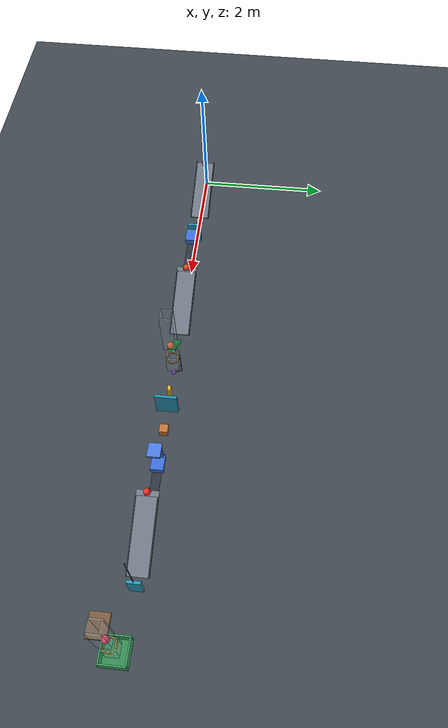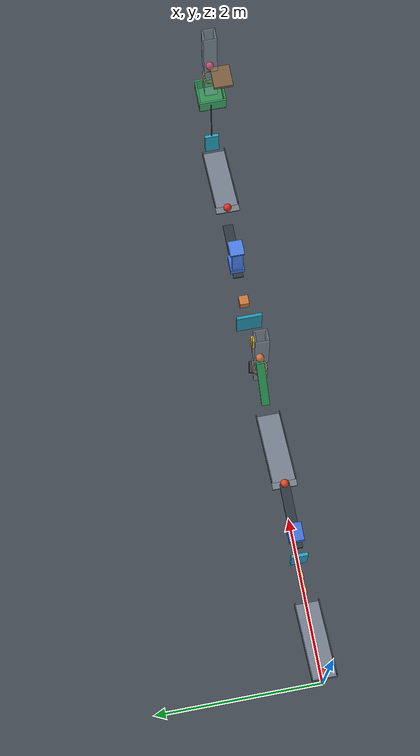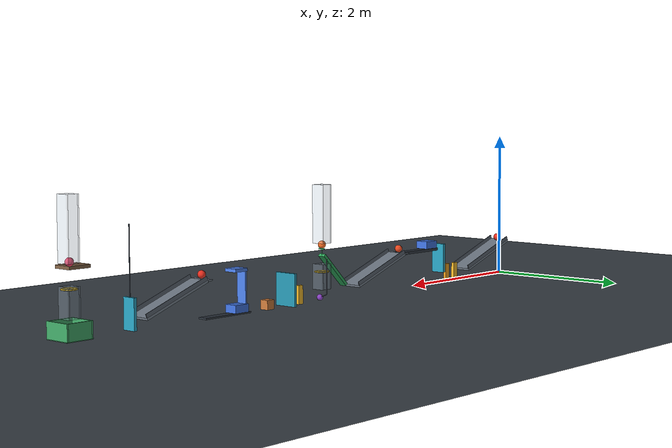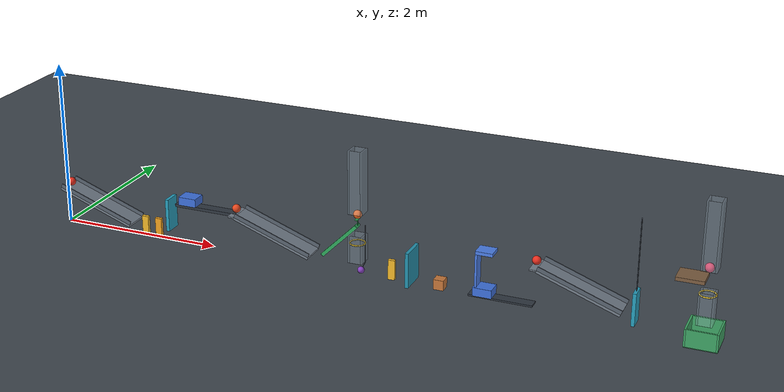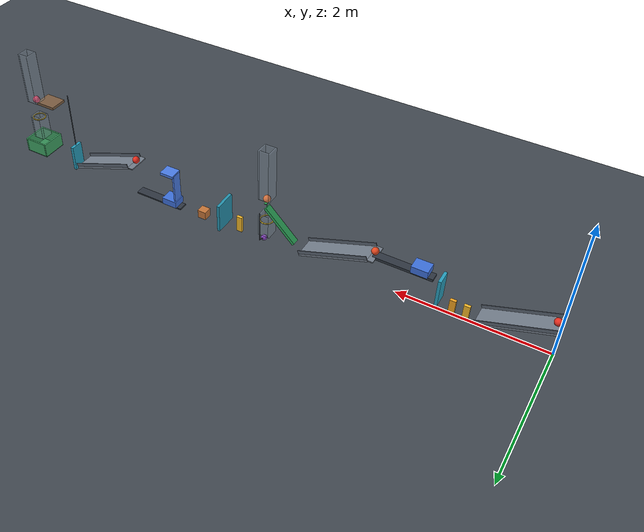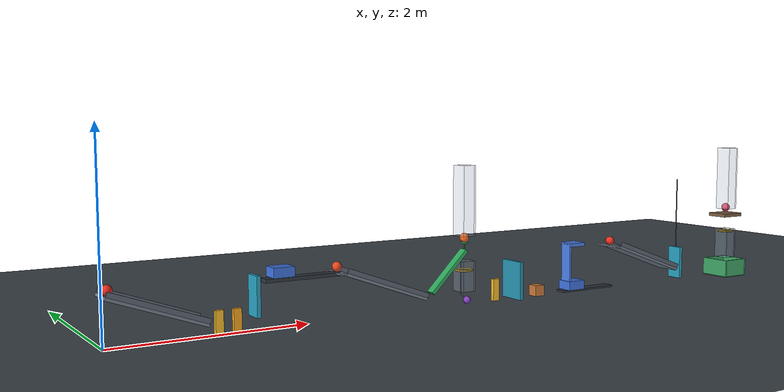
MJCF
<mujoco model="corrected_assisted_chain_reaction">
  <compiler angle="degree" autolimits="true" inertiafromgeom="auto"/>
  <option timestep="0.002" gravity="0 0 -9.81" integrator="implicitfast" solver="Newton" iterations="100" cone="elliptic"/>
  <size njmax="3000" nconmax="1000"/>
  <visual>
    <headlight ambient="0.45 0.45 0.45" diffuse="0.7 0.7 0.7" specular="0.2 0.2 0.2"/>
    <map znear="0.01" zfar="40"/>
  </visual>

  <worldbody>
    <light name="main_light" pos="4 -4 7" dir="0 0 -1" directional="true"/>
    <camera name="overview" pos="4 -10 6" xyaxes="1 0 0 0 0.45 0.893"/>
    <geom name="floor" type="plane" size="12 5 0.1" friction="0.70 0.001 0.0001" condim="3" solref="0.006 0.6901" solimp="0.95 0.99 0.001" rgba="0.25 0.28 0.31 1"/>

    <body name="ramp1" pos="0 0 0.492020143" quat="0.984807753 0 0.173648178 0">
      <geom name="ramp1_surface" type="box" pos="0.5 0 -0.015" size="0.50 0.15 0.015" friction="0.70 0.001 0.0001" condim="3" solref="0.006 0.6901" solimp="0.95 0.99 0.001" rgba="0.45 0.49 0.54 1"/>
      <geom name="ramp1_left_curb" type="box" pos="0.5 0.145 0.025" size="0.50 0.005 0.025" friction="0.70 0.001 0.0001" condim="3" solref="0.006 0.6901" solimp="0.95 0.99 0.001" rgba="0.35 0.39 0.44 1"/>
      <geom name="ramp1_right_curb" type="box" pos="0.5 -0.145 0.025" size="0.50 0.005 0.025" friction="0.70 0.001 0.0001" condim="3" solref="0.006 0.6901" solimp="0.95 0.99 0.001" rgba="0.35 0.39 0.44 1"/>
    </body>

    <body name="ball1" pos="0.054688715 0 0.525324168">
      <freejoint name="ball1_free"/>
      <geom name="ball1_sphere" type="sphere" size="0.05" mass="0.20" friction="0.70 0.001 0.0001" condim="3" solref="0.006 0.6901" solimp="0.95 0.99 0.001" rgba="0.90 0.18 0.12 1"/>
    </body>

    <!-- Ramp1 exit to domino1 near face: 0.10 m.
         Domino1-to-domino2 centre spacing: 0.18 m. -->
    <body name="domino1" pos="1.079692621 0 0.12">
      <freejoint name="domino1_free"/>
      <geom name="domino1_box" type="box" size="0.04 0.02 0.12" mass="0.25" friction="0.70 0.001 0.0001" condim="3" solref="0.006 0.6901" solimp="0.95 0.99 0.001" rgba="0.95 0.72 0.16 1"/>
    </body>

    <body name="domino2" pos="1.259692621 0 0.12">
      <freejoint name="domino2_free"/>
      <geom name="domino2_box" type="box" size="0.04 0.02 0.12" mass="0.25" friction="0.70 0.001 0.0001" condim="3" solref="0.006 0.6901" solimp="0.95 0.99 0.001" rgba="0.95 0.64 0.12 1"/>
    </body>

    <!-- Clockwise viewed from above.
         Lower panel receives domino2; upper panel strikes cart1. -->
    <body name="flap1" pos="1.439692621 -0.10 0.34">
      <joint name="flap1_hinge" type="hinge" axis="0 0 -1" range="0 65" damping="0.04" frictionloss="0.03" armature="0.0001" solreflimit="0.004 1"/>
      <geom name="flap1_panel" type="box" pos="0 0.10 0" size="0.02 0.10 0.20" mass="0.30" friction="0.70 0.001 0.0001" condim="3" solref="0.006 0.6901" solimp="0.95 0.99 0.001" rgba="0.15 0.62 0.74 1"/>
    </body>

    <!-- Cart1 clears ramp2's landing and first touches ball2
         after 0.45 m of slide travel. -->
    <body name="cart1" pos="1.709692621 0 0.550020143">
      <joint name="cart1_slide" type="slide" axis="1 0 0" range="0 0.53" damping="0.20" solreflimit="0.004 1"/>
      <geom name="cart1_box" type="box" size="0.11 0.09 0.05" mass="0.50" friction="0.70 0.001 0.0001" condim="3" solref="0.006 0.6901" solimp="0.95 0.99 0.001" rgba="0.24 0.44 0.86 1"/>
    </body>

    <body name="cart1_track" pos="1.934692621 0 0.475">
      <geom name="cart1_track_beam" type="box" size="0.40 0.06 0.018" contype="0" conaffinity="0" friction="0.70 0.001 0.0001" rgba="0.18 0.21 0.25 1"/>
    </body>

    <body name="ramp2" pos="2.359692621 0 0.492020143" quat="0.984807753 0 0.173648178 0">
      <geom name="ramp2_surface" type="box" pos="0.5 0 -0.015" size="0.50 0.15 0.015" friction="0.70 0.001 0.0001" condim="3" solref="0.006 0.6901" solimp="0.95 0.99 0.001" rgba="0.45 0.49 0.54 1"/>
      <geom name="ramp2_high_landing" type="box" pos="-0.034851544 0 -0.021198347" quat="0.984807753 0 -0.173648178 0" size="0.04 0.15 0.008" friction="0.70 0.001 0.0001" condim="3" solref="0.006 0.6901" solimp="0.95 0.99 0.001" rgba="0.45 0.49 0.54 1"/>
      <geom name="ramp2_left_curb" type="box" pos="0.5 0.145 0.025" size="0.50 0.005 0.025" friction="0.70 0.001 0.0001" condim="3" solref="0.006 0.6901" solimp="0.95 0.99 0.001" rgba="0.35 0.39 0.44 1"/>
      <geom name="ramp2_right_curb" type="box" pos="0.5 -0.145 0.025" size="0.50 0.005 0.025" friction="0.70 0.001 0.0001" condim="3" solref="0.006 0.6901" solimp="0.95 0.99 0.001" rgba="0.35 0.39 0.44 1"/>
    </body>

    <body name="ball2" pos="2.319692621 0 0.542020143">
      <freejoint name="ball2_free"/>
      <geom name="ball2_sphere" type="sphere" size="0.05" mass="0.20" friction="0.70 0.001 0.0001" condim="3" solref="0.006 0.6901" solimp="0.95 0.99 0.001" rgba="0.90 0.28 0.12 1"/>
    </body>

    <body name="lever1" pos="3.645659412 0 0.377132034" quat="0.923879533 0 -0.382683432 0">
      <inertial pos="0 0 0" mass="0.50" diaginertia="0.000483333 0.015066667 0.015416667"/>
      <joint name="lever1_hinge" type="hinge" axis="0 -1 0" range="0 45" damping="0.04" frictionloss="0.08" armature="0.0001" solreflimit="0.004 1"/>
      <geom name="lever1_beam" type="box" size="0.30 0.05 0.02" friction="0.70 0.001 0.0001" condim="3" solref="0.006 0.6901" solimp="0.95 0.99 0.001" rgba="0.18 0.66 0.36 1"/>
      <geom name="lever1_holder" type="capsule" fromto="0.3 0 0 0.356568542 0 0.056568542" size="0.004" density="0" friction="0.70 0.001 0.0001" condim="3" solref="0.006 0.6901" solimp="0.95 0.99 0.001" rgba="0.18 0.66 0.36 1"/>
      <geom name="lever1_launch_pad" type="box" pos="0.356568542 0 0.056568542" quat="0.923879533 0 0.382683432 0" size="0.015 0.045 0.006" friction="0.70 0.001 0.0001" condim="3" solref="0.006 0.6901" solimp="0.95 0.99 0.001" rgba="0.24 0.76 0.42 1"/>
    </body>

    <body name="ball3" pos="3.857791446 0 0.725264068">
      <freejoint name="ball3_free"/>
      <geom name="ball3_sphere" type="sphere" size="0.05" mass="0.20" friction="0.70 0.001 0.0001" condim="3" solref="0.006 0.6901" solimp="0.95 0.99 0.001" rgba="0.96 0.42 0.13 1"/>
    </body>

    <!-- All four walls are split.
         The gap clears the launcher and pendulum hinge region.
         Upper walls begin above the launch pad's wall-crossing sweep. -->
    <body name="ball3_guides" pos="3.857791446 0 0">
      <geom name="ball3_guides_upper_x_positive" type="box" pos="0.075 0 1.1225" size="0.010 0.085 0.3775" friction="0.70 0.001 0.0001" condim="3" solref="0.006 0.6901" solimp="0.95 0.99 0.001" rgba="0.70 0.78 0.86 0.28"/>
      <geom name="ball3_guides_upper_x_negative" type="box" pos="-0.075 0 1.1225" size="0.010 0.085 0.3775" friction="0.70 0.001 0.0001" condim="3" solref="0.006 0.6901" solimp="0.95 0.99 0.001" rgba="0.70 0.78 0.86 0.28"/>
      <geom name="ball3_guides_upper_y_positive" type="box" pos="0 0.075 1.1225" size="0.065 0.010 0.3775" friction="0.70 0.001 0.0001" condim="3" solref="0.006 0.6901" solimp="0.95 0.99 0.001" rgba="0.70 0.78 0.86 0.28"/>
      <geom name="ball3_guides_upper_y_negative" type="box" pos="0 -0.075 1.1225" size="0.065 0.010 0.3775" friction="0.70 0.001 0.0001" condim="3" solref="0.006 0.6901" solimp="0.95 0.99 0.001" rgba="0.70 0.78 0.86 0.28"/>
      <geom name="ball3_guides_lower_x_positive" type="box" pos="0.075 0 0.3125" size="0.010 0.085 0.1625" friction="0.70 0.001 0.0001" condim="3" solref="0.006 0.6901" solimp="0.95 0.99 0.001" rgba="0.70 0.78 0.86 0.28"/>
      <geom name="ball3_guides_lower_x_negative" type="box" pos="-0.075 0 0.3125" size="0.010 0.085 0.1625" friction="0.70 0.001 0.0001" condim="3" solref="0.006 0.6901" solimp="0.95 0.99 0.001" rgba="0.70 0.78 0.86 0.28"/>
      <geom name="ball3_guides_lower_y_positive" type="box" pos="0 0.075 0.3125" size="0.065 0.010 0.1625" friction="0.70 0.001 0.0001" condim="3" solref="0.006 0.6901" solimp="0.95 0.99 0.001" rgba="0.70 0.78 0.86 0.28"/>
      <geom name="ball3_guides_lower_y_negative" type="box" pos="0 -0.075 0.3125" size="0.065 0.010 0.1625" friction="0.70 0.001 0.0001" condim="3" solref="0.006 0.6901" solimp="0.95 0.99 0.001" rgba="0.70 0.78 0.86 0.28"/>
    </body>

    <!-- Ring1 centre is 0.35 m below ball3's initial centre. -->
    <body name="ring1" pos="3.857791446 0 0.375264068">
      <geom name="ring1_segment01" type="capsule" fromto="0.089725 0 0 0.082894 0.034336 0" size="0.008" friction="0.70 0.001 0.0001" condim="3" solref="0.006 0.6901" solimp="0.95 0.99 0.001" rgba="0.95 0.80 0.20 1"/>
      <geom name="ring1_segment02" type="capsule" fromto="0.082894 0.034336 0 0.063446 0.063446 0" size="0.008" friction="0.70 0.001 0.0001" condim="3" solref="0.006 0.6901" solimp="0.95 0.99 0.001" rgba="0.95 0.80 0.20 1"/>
      <geom name="ring1_segment03" type="capsule" fromto="0.063446 0.063446 0 0.034336 0.082894 0" size="0.008" friction="0.70 0.001 0.0001" condim="3" solref="0.006 0.6901" solimp="0.95 0.99 0.001" rgba="0.95 0.80 0.20 1"/>
      <geom name="ring1_segment04" type="capsule" fromto="0.034336 0.082894 0 0 0.089725 0" size="0.008" friction="0.70 0.001 0.0001" condim="3" solref="0.006 0.6901" solimp="0.95 0.99 0.001" rgba="0.95 0.80 0.20 1"/>
      <geom name="ring1_segment05" type="capsule" fromto="0 0.089725 0 -0.034336 0.082894 0" size="0.008" friction="0.70 0.001 0.0001" condim="3" solref="0.006 0.6901" solimp="0.95 0.99 0.001" rgba="0.95 0.80 0.20 1"/>
      <geom name="ring1_segment06" type="capsule" fromto="-0.034336 0.082894 0 -0.063446 0.063446 0" size="0.008" friction="0.70 0.001 0.0001" condim="3" solref="0.006 0.6901" solimp="0.95 0.99 0.001" rgba="0.95 0.80 0.20 1"/>
      <geom name="ring1_segment07" type="capsule" fromto="-0.063446 0.063446 0 -0.082894 0.034336 0" size="0.008" friction="0.70 0.001 0.0001" condim="3" solref="0.006 0.6901" solimp="0.95 0.99 0.001" rgba="0.95 0.80 0.20 1"/>
      <geom name="ring1_segment08" type="capsule" fromto="-0.082894 0.034336 0 -0.089725 0 0" size="0.008" friction="0.70 0.001 0.0001" condim="3" solref="0.006 0.6901" solimp="0.95 0.99 0.001" rgba="0.95 0.80 0.20 1"/>
      <geom name="ring1_segment09" type="capsule" fromto="-0.089725 0 0 -0.082894 -0.034336 0" size="0.008" friction="0.70 0.001 0.0001" condim="3" solref="0.006 0.6901" solimp="0.95 0.99 0.001" rgba="0.95 0.80 0.20 1"/>
      <geom name="ring1_segment10" type="capsule" fromto="-0.082894 -0.034336 0 -0.063446 -0.063446 0" size="0.008" friction="0.70 0.001 0.0001" condim="3" solref="0.006 0.6901" solimp="0.95 0.99 0.001" rgba="0.95 0.80 0.20 1"/>
      <geom name="ring1_segment11" type="capsule" fromto="-0.063446 -0.063446 0 -0.034336 -0.082894 0" size="0.008" friction="0.70 0.001 0.0001" condim="3" solref="0.006 0.6901" solimp="0.95 0.99 0.001" rgba="0.95 0.80 0.20 1"/>
      <geom name="ring1_segment12" type="capsule" fromto="-0.034336 -0.082894 0 0 -0.089725 0" size="0.008" friction="0.70 0.001 0.0001" condim="3" solref="0.006 0.6901" solimp="0.95 0.99 0.001" rgba="0.95 0.80 0.20 1"/>
      <geom name="ring1_segment13" type="capsule" fromto="0 -0.089725 0 0.034336 -0.082894 0" size="0.008" friction="0.70 0.001 0.0001" condim="3" solref="0.006 0.6901" solimp="0.95 0.99 0.001" rgba="0.95 0.80 0.20 1"/>
      <geom name="ring1_segment14" type="capsule" fromto="0.034336 -0.082894 0 0.063446 -0.063446 0" size="0.008" friction="0.70 0.001 0.0001" condim="3" solref="0.006 0.6901" solimp="0.95 0.99 0.001" rgba="0.95 0.80 0.20 1"/>
      <geom name="ring1_segment15" type="capsule" fromto="0.063446 -0.063446 0 0.082894 -0.034336 0" size="0.008" friction="0.70 0.001 0.0001" condim="3" solref="0.006 0.6901" solimp="0.95 0.99 0.001" rgba="0.95 0.80 0.20 1"/>
      <geom name="ring1_segment16" type="capsule" fromto="0.082894 -0.034336 0 0.089725 0 0" size="0.008" friction="0.70 0.001 0.0001" condim="3" solref="0.006 0.6901" solimp="0.95 0.99 0.001" rgba="0.95 0.80 0.20 1"/>
    </body>

    <body name="pendulum1" pos="3.897791446 0 0.544641491">
      <joint name="pendulum1_hinge" type="hinge" axis="0 -1 0" range="0 40" damping="0.04" frictionloss="0.03" armature="0.0001" solreflimit="0.004 1"/>
      <geom name="pendulum1_rod" type="capsule" fromto="0 0.12 0 0 0.12 -0.45" size="0.006" mass="0.045" friction="0.70 0.001 0.0001" condim="3" solref="0.006 0.6901" solimp="0.95 0.99 0.001" rgba="0.34 0.37 0.42 1"/>
      <geom name="pendulum1_lower_connector" type="capsule" fromto="0 0.12 -0.45 0 0 -0.50" size="0.006" mass="0.005" friction="0.70 0.001 0.0001" condim="3" solref="0.006 0.6901" solimp="0.95 0.99 0.001" rgba="0.34 0.37 0.42 1"/>
      <geom name="pendulum1_bob" type="sphere" pos="0 0 -0.50" size="0.04" mass="0.300" friction="0.70 0.001 0.0001" condim="3" solref="0.006 0.6901" solimp="0.95 0.99 0.001" rgba="0.52 0.25 0.75 1"/>
    </body>

    <!-- Nominal first contact follows 0.32 m of bob-centre arc,
         at hinge angle 0.64 radians. -->
    <body name="domino3" pos="4.276389167 0 0.12">
      <freejoint name="domino3_free"/>
      <geom name="domino3_box" type="box" size="0.04 0.02 0.12" mass="0.25" friction="0.70 0.001 0.0001" condim="3" solref="0.006 0.6901" solimp="0.95 0.99 0.001" rgba="0.95 0.72 0.16 1"/>
    </body>

    <!-- Initial domino3-to-door1 surface gap: 0.18 m. -->
    <body name="door1" pos="4.516389167 -0.16 0.213">
      <joint name="door1_hinge" type="hinge" axis="0 0 -1" range="0 70" damping="0.04" frictionloss="0.06" armature="0.0001" solreflimit="0.004 1"/>
      <geom name="door1_panel" type="box" pos="0 0.16 0" size="0.02 0.16 0.21" mass="0.45" friction="0.70 0.001 0.0001" condim="3" solref="0.006 0.6901" solimp="0.95 0.99 0.001" rgba="0.14 0.57 0.68 1"/>
    </body>

    <body name="block1" pos="4.856389167 0 0.06">
      <freejoint name="block1_free"/>
      <geom name="block1_cube" type="box" size="0.06 0.06 0.06" mass="0.35" friction="0.70 0.001 0.0001" condim="3" solref="0.006 0.6901" solimp="0.95 0.99 0.001" rgba="0.77 0.46 0.22 1"/>
    </body>

    <body name="cart2" pos="5.376389167 0 0.075">
      <inertial pos="0 0 0" mass="0.50" diaginertia="0.001766667 0.002433333 0.003366667"/>
      <joint name="cart2_slide" type="slide" axis="1 0 0" range="0 0.50" damping="0.20" solreflimit="0.004 1"/>
      <geom name="cart2_box" type="box" size="0.11 0.09 0.05" friction="0.70 0.001 0.0001" condim="3" solref="0.006 0.6901" solimp="0.95 0.99 0.001" rgba="0.24 0.44 0.86 1"/>
      <geom name="cart2_pusher_mast" type="box" pos="-0.085 0 0.235" size="0.012 0.07 0.24" friction="0.70 0.001 0.0001" condim="3" solref="0.006 0.6901" solimp="0.95 0.99 0.001" rgba="0.29 0.49 0.90 1"/>
      <geom name="cart2_pusher_head" type="box" pos="0.01 0 0.47" size="0.10 0.09 0.02" friction="0.70 0.001 0.0001" condim="3" solref="0.006 0.6901" solimp="0.95 0.99 0.001" rgba="0.29 0.49 0.90 1"/>
    </body>

    <body name="cart2_track" pos="5.576389167 0 0.012">
      <geom name="cart2_track_beam" type="box" size="0.37 0.065 0.010" contype="0" conaffinity="0" friction="0.70 0.001 0.0001" rgba="0.18 0.21 0.25 1"/>
    </body>

    <body name="ramp3" pos="5.996389167 0 0.492020143" quat="0.984807753 0 0.173648178 0">
      <geom name="ramp3_surface" type="box" pos="0.5 0 -0.015" size="0.50 0.15 0.015" friction="0.70 0.001 0.0001" condim="3" solref="0.006 0.6901" solimp="0.95 0.99 0.001" rgba="0.45 0.49 0.54 1"/>
      <geom name="ramp3_high_landing" type="box" pos="-0.034851544 0 -0.021198347" quat="0.984807753 0 -0.173648178 0" size="0.04 0.15 0.008" friction="0.70 0.001 0.0001" condim="3" solref="0.006 0.6901" solimp="0.95 0.99 0.001" rgba="0.45 0.49 0.54 1"/>
      <geom name="ramp3_left_curb" type="box" pos="0.5 0.145 0.025" size="0.50 0.005 0.025" friction="0.70 0.001 0.0001" condim="3" solref="0.006 0.6901" solimp="0.95 0.99 0.001" rgba="0.35 0.39 0.44 1"/>
      <geom name="ramp3_right_curb" type="box" pos="0.5 -0.145 0.025" size="0.50 0.005 0.025" friction="0.70 0.001 0.0001" condim="3" solref="0.006 0.6901" solimp="0.95 0.99 0.001" rgba="0.35 0.39 0.44 1"/>
    </body>

    <body name="ball4" pos="5.956389167 0 0.542020143">
      <freejoint name="ball4_free"/>
      <geom name="ball4_sphere" type="sphere" size="0.05" mass="0.20" friction="0.70 0.001 0.0001" condim="3" solref="0.006 0.6901" solimp="0.95 0.99 0.001" rgba="0.90 0.18 0.12 1"/>
    </body>

    <!-- Ramp3 exit to initial flap2 near face: 0.10 m.
         Offset carrier bridges the low exit and elevated shelf.
         Panel dimensions and mass are unchanged. -->
    <body name="flap2" pos="7.056081788 0 1.22">
      <joint name="flap2_hinge" type="hinge" axis="0 -1 0" range="0 60" damping="0.04" frictionloss="0.04" armature="0.0001" solreflimit="0.004 1"/>
      <geom name="flap2_panel" type="box" pos="0 0 -1.02" size="0.02 0.09 0.19" mass="0.28" friction="0.70 0.001 0.0001" condim="3" solref="0.006 0.6901" solimp="0.95 0.99 0.001" rgba="0.15 0.62 0.74 1"/>
      <geom name="flap2_carrier" type="capsule" fromto="0 0 0 0 0 -0.83" size="0.006" density="0" contype="0" conaffinity="0" friction="0.70 0.001 0.0001" rgba="0.31 0.35 0.40 1"/>
    </body>

    <body name="shelf1" pos="7.660081788 -0.245 0.78">
      <geom name="shelf1_slab" type="box" size="0.15 0.125 0.02" friction="0.70 0.001 0.0001" condim="3" solref="0.006 0.6901" solimp="0.95 0.99 0.001" rgba="0.48 0.36 0.25 1"/>
    </body>

    <body name="ball5" pos="7.806081788 -0.121 0.85">
      <freejoint name="ball5_free"/>
      <geom name="ball5_sphere" type="sphere" size="0.05" mass="0.20" friction="0.70 0.001 0.0001" condim="3" solref="0.006 0.6901" solimp="0.95 0.99 0.001" rgba="0.92 0.23 0.38 1"/>
    </body>

    <!-- The opening between guide sections clears flap2's sweep. -->
    <body name="ball5_guides" pos="7.813081788 -0.121 0">
      <geom name="ball5_guides_upper_x_positive" type="box" pos="0.075 0 1.2175" size="0.010 0.085 0.3825" friction="0.70 0.001 0.0001" condim="3" solref="0.006 0.6901" solimp="0.95 0.99 0.001" rgba="0.70 0.78 0.86 0.28"/>
      <geom name="ball5_guides_upper_x_negative" type="box" pos="-0.075 0 1.2175" size="0.010 0.085 0.3825" friction="0.70 0.001 0.0001" condim="3" solref="0.006 0.6901" solimp="0.95 0.99 0.001" rgba="0.70 0.78 0.86 0.28"/>
      <geom name="ball5_guides_upper_y_positive" type="box" pos="0 0.075 1.2175" size="0.065 0.010 0.3825" friction="0.70 0.001 0.0001" condim="3" solref="0.006 0.6901" solimp="0.95 0.99 0.001" rgba="0.70 0.78 0.86 0.28"/>
      <geom name="ball5_guides_upper_y_negative" type="box" pos="0 -0.075 1.2175" size="0.065 0.010 0.3825" friction="0.70 0.001 0.0001" condim="3" solref="0.006 0.6901" solimp="0.95 0.99 0.001" rgba="0.70 0.78 0.86 0.28"/>
      <geom name="ball5_guides_lower_x_positive" type="box" pos="0.075 0 0.40" size="0.010 0.085 0.18" friction="0.70 0.001 0.0001" condim="3" solref="0.006 0.6901" solimp="0.95 0.99 0.001" rgba="0.70 0.78 0.86 0.28"/>
      <geom name="ball5_guides_lower_x_negative" type="box" pos="-0.075 0 0.40" size="0.010 0.085 0.18" friction="0.70 0.001 0.0001" condim="3" solref="0.006 0.6901" solimp="0.95 0.99 0.001" rgba="0.70 0.78 0.86 0.28"/>
      <geom name="ball5_guides_lower_y_positive" type="box" pos="0 0.075 0.40" size="0.065 0.010 0.18" friction="0.70 0.001 0.0001" condim="3" solref="0.006 0.6901" solimp="0.95 0.99 0.001" rgba="0.70 0.78 0.86 0.28"/>
      <geom name="ball5_guides_lower_y_negative" type="box" pos="0 -0.075 0.40" size="0.065 0.010 0.18" friction="0.70 0.001 0.0001" condim="3" solref="0.006 0.6901" solimp="0.95 0.99 0.001" rgba="0.70 0.78 0.86 0.28"/>
    </body>

    <body name="ring2" pos="7.813081788 -0.121 0.55">
      <geom name="ring2_segment01" type="capsule" fromto="0.089725 0 0 0.082894 0.034336 0" size="0.008" friction="0.70 0.001 0.0001" condim="3" solref="0.006 0.6901" solimp="0.95 0.99 0.001" rgba="0.95 0.80 0.20 1"/>
      <geom name="ring2_segment02" type="capsule" fromto="0.082894 0.034336 0 0.063446 0.063446 0" size="0.008" friction="0.70 0.001 0.0001" condim="3" solref="0.006 0.6901" solimp="0.95 0.99 0.001" rgba="0.95 0.80 0.20 1"/>
      <geom name="ring2_segment03" type="capsule" fromto="0.063446 0.063446 0 0.034336 0.082894 0" size="0.008" friction="0.70 0.001 0.0001" condim="3" solref="0.006 0.6901" solimp="0.95 0.99 0.001" rgba="0.95 0.80 0.20 1"/>
      <geom name="ring2_segment04" type="capsule" fromto="0.034336 0.082894 0 0 0.089725 0" size="0.008" friction="0.70 0.001 0.0001" condim="3" solref="0.006 0.6901" solimp="0.95 0.99 0.001" rgba="0.95 0.80 0.20 1"/>
      <geom name="ring2_segment05" type="capsule" fromto="0 0.089725 0 -0.034336 0.082894 0" size="0.008" friction="0.70 0.001 0.0001" condim="3" solref="0.006 0.6901" solimp="0.95 0.99 0.001" rgba="0.95 0.80 0.20 1"/>
      <geom name="ring2_segment06" type="capsule" fromto="-0.034336 0.082894 0 -0.063446 0.063446 0" size="0.008" friction="0.70 0.001 0.0001" condim="3" solref="0.006 0.6901" solimp="0.95 0.99 0.001" rgba="0.95 0.80 0.20 1"/>
      <geom name="ring2_segment07" type="capsule" fromto="-0.063446 0.063446 0 -0.082894 0.034336 0" size="0.008" friction="0.70 0.001 0.0001" condim="3" solref="0.006 0.6901" solimp="0.95 0.99 0.001" rgba="0.95 0.80 0.20 1"/>
      <geom name="ring2_segment08" type="capsule" fromto="-0.082894 0.034336 0 -0.089725 0 0" size="0.008" friction="0.70 0.001 0.0001" condim="3" solref="0.006 0.6901" solimp="0.95 0.99 0.001" rgba="0.95 0.80 0.20 1"/>
      <geom name="ring2_segment09" type="capsule" fromto="-0.089725 0 0 -0.082894 -0.034336 0" size="0.008" friction="0.70 0.001 0.0001" condim="3" solref="0.006 0.6901" solimp="0.95 0.99 0.001" rgba="0.95 0.80 0.20 1"/>
      <geom name="ring2_segment10" type="capsule" fromto="-0.082894 -0.034336 0 -0.063446 -0.063446 0" size="0.008" friction="0.70 0.001 0.0001" condim="3" solref="0.006 0.6901" solimp="0.95 0.99 0.001" rgba="0.95 0.80 0.20 1"/>
      <geom name="ring2_segment11" type="capsule" fromto="-0.063446 -0.063446 0 -0.034336 -0.082894 0" size="0.008" friction="0.70 0.001 0.0001" condim="3" solref="0.006 0.6901" solimp="0.95 0.99 0.001" rgba="0.95 0.80 0.20 1"/>
      <geom name="ring2_segment12" type="capsule" fromto="-0.034336 -0.082894 0 0 -0.089725 0" size="0.008" friction="0.70 0.001 0.0001" condim="3" solref="0.006 0.6901" solimp="0.95 0.99 0.001" rgba="0.95 0.80 0.20 1"/>
      <geom name="ring2_segment13" type="capsule" fromto="0 -0.089725 0 0.034336 -0.082894 0" size="0.008" friction="0.70 0.001 0.0001" condim="3" solref="0.006 0.6901" solimp="0.95 0.99 0.001" rgba="0.95 0.80 0.20 1"/>
      <geom name="ring2_segment14" type="capsule" fromto="0.034336 -0.082894 0 0.063446 -0.063446 0" size="0.008" friction="0.70 0.001 0.0001" condim="3" solref="0.006 0.6901" solimp="0.95 0.99 0.001" rgba="0.95 0.80 0.20 1"/>
      <geom name="ring2_segment15" type="capsule" fromto="0.063446 -0.063446 0 0.082894 -0.034336 0" size="0.008" friction="0.70 0.001 0.0001" condim="3" solref="0.006 0.6901" solimp="0.95 0.99 0.001" rgba="0.95 0.80 0.20 1"/>
      <geom name="ring2_segment16" type="capsule" fromto="0.082894 -0.034336 0 0.089725 0 0" size="0.008" friction="0.70 0.001 0.0001" condim="3" solref="0.006 0.6901" solimp="0.95 0.99 0.001" rgba="0.95 0.80 0.20 1"/>
    </body>

    <!-- Inner footprint 0.32 x 0.32 m.
         Walls are 0.20 m high and 0.02 m thick.
         Ring2 is 0.35 m above the rim. -->
    <body name="bin1" pos="7.813081788 -0.121 0">
      <geom name="bin1_base" type="box" pos="0 0 -0.01" size="0.18 0.18 0.01" friction="0.70 0.001 0.0001" condim="3" solref="0.006 0.6901" solimp="0.95 0.99 0.001" rgba="0.20 0.55 0.33 1"/>
      <geom name="bin1_wall_x_positive" type="box" pos="0.17 0 0.10" size="0.01 0.18 0.10" friction="0.70 0.001 0.0001" condim="3" solref="0.006 0.6901" solimp="0.95 0.99 0.001" rgba="0.24 0.64 0.39 1"/>
      <geom name="bin1_wall_x_negative" type="box" pos="-0.17 0 0.10" size="0.01 0.18 0.10" friction="0.70 0.001 0.0001" condim="3" solref="0.006 0.6901" solimp="0.95 0.99 0.001" rgba="0.24 0.64 0.39 1"/>
      <geom name="bin1_wall_y_positive" type="box" pos="0 0.17 0.10" size="0.16 0.01 0.10" friction="0.70 0.001 0.0001" condim="3" solref="0.006 0.6901" solimp="0.95 0.99 0.001" rgba="0.24 0.64 0.39 1"/>
      <geom name="bin1_wall_y_negative" type="box" pos="0 -0.17 0.10" size="0.16 0.01 0.10" friction="0.70 0.001 0.0001" condim="3" solref="0.006 0.6901" solimp="0.95 0.99 0.001" rgba="0.24 0.64 0.39 1"/>
    </body>
  </worldbody>

  <actuator>
    <general name="flap1_impact_assist" joint="flap1_hinge" gaintype="fixed" gainprm="0" biastype="affine" biasprm="0 3 0"/>
    <general name="lever1_balance_and_assist" joint="lever1_hinge" gaintype="fixed" gainprm="0" biastype="affine" biasprm="0.416203051 1.5 0"/>
    <general name="pendulum1_impact_assist" joint="pendulum1_hinge" gaintype="fixed" gainprm="0" biastype="affine" biasprm="0 3 0"/>
    <general name="door1_impact_assist" joint="door1_hinge" gaintype="fixed" gainprm="0" biastype="affine" biasprm="0 12 0"/>
    <general name="flap2_impact_assist" joint="flap2_hinge" gaintype="fixed" gainprm="0" biastype="affine" biasprm="0 8 0"/>
  </actuator>

  <keyframe>
    <key name="start" time="0" ctrl="0 0 0 0 0"/>
  </keyframe>
</mujoco>
